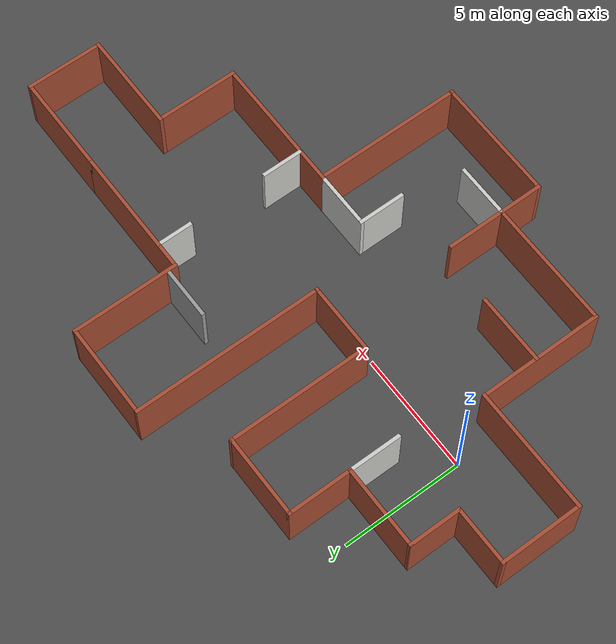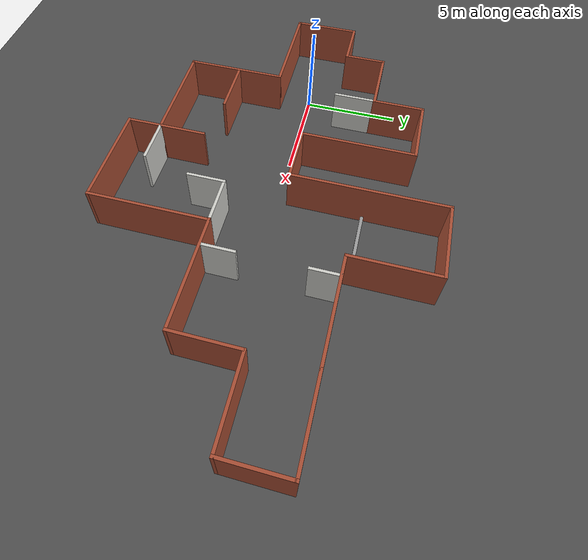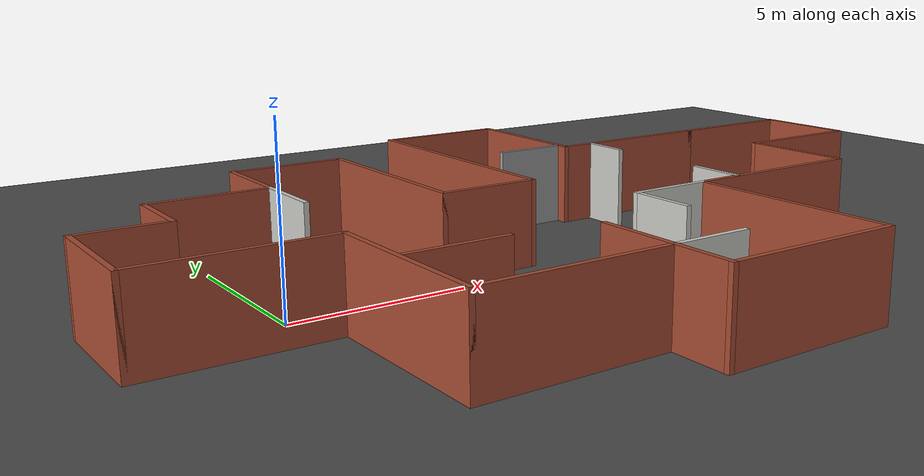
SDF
<sdf version="1.6">
 <world name="default">
  <light name="sun" type="directional">
   <pose>0 0 10 0 -0 0</pose>
   <diffuse>0.8 0.8 0.8 1</diffuse>
   <specular>0.2 0.2 0.2 1</specular>
   <attenuation>
    <range>1000</range>
    <constant>0.9</constant>
    <linear>0.01</linear>
    <quadratic>0.001</quadratic>
   </attenuation>
   <direction>-0.5 0.1 -0.9</direction>
  </light>
  <model name="ground_plane">
   <static>1</static>
   <link name="link">
    <collision name="collision">
     <geometry><plane><normal>0 0 1</normal><size>100 100</size></plane></geometry>
     <surface>
      <contact><collide_bitmask>65535</collide_bitmask></contact>
      <friction><ode><mu>100</mu><mu2>50</mu2></ode></friction>
     </surface>
    </collision>
    <visual name="visual">
     <cast_shadows>0</cast_shadows>
     <geometry><plane><normal>0 0 1</normal><size>100 100</size></plane></geometry>
     <material>
      <script><uri>file://media/materials/scripts/gazebo.material</uri><name>Gazebo/Grey</name></script>
     </material>
    </visual>
   </link>
  </model>
  <model name="asphalt_plane">
   <static>1</static>
   <link name="link">
    <collision name="collision"><geometry><box><size>200 200 0.1</size></box></geometry></collision>
    <visual name="visual">
     <cast_shadows>0</cast_shadows>
     <geometry><box><size>200 200 0.1</size></box></geometry>
     <material>
      <script>
       <uri>model://asphalt_plane/materials/scripts</uri>
       <uri>model://asphalt_plane/materials/textures</uri>
       <name>vrc/asphalt</name>
      </script>
     </material>
    </visual>
   </link>
  </model>
  <physics name="default_physics" default="0" type="ode">
   <ode>
    <solver>
     <type>quick</type>
     <iters>10</iters>
     <sor>1.3</sor>
     <use_dynamic_moi_rescaling>0</use_dynamic_moi_rescaling>
    </solver>
    <constraints>
     <cfm>0</cfm>
     <erp>0.2</erp>
     <contact_max_correcting_vel>100</contact_max_correcting_vel>
     <contact_surface_layer>0.001</contact_surface_layer>
    </constraints>
   </ode>
   <max_step_size>0.002</max_step_size>
   <real_time_factor>1</real_time_factor>
   <real_time_update_rate>500</real_time_update_rate>
  </physics>
  <gravity>0 0 -9.8066</gravity>
  <magnetic_field>6e-06 2.3e-05 -4.2e-05</magnetic_field>
  <atmosphere type="adiabatic"/>
  <scene><ambient>0.4 0.4 0.4 1</ambient><background>0.7 0.7 0.7 1</background><shadows>1</shadows></scene>
  <audio><device>default</device></audio>
  <spherical_coordinates>
   <surface_model>EARTH_WGS84</surface_model>
   <latitude_deg>0</latitude_deg>
   <longitude_deg>0</longitude_deg>
   <elevation>0</elevation>
   <heading_deg>0</heading_deg>
  </spherical_coordinates>
  <model name="complex_home_3">
   <pose>8.31319 -0.056291 0 0 -0 0</pose>
   <link name="Wall_12">
    <collision name="Wall_12_Collision">
     <geometry><box><size>3.5 0.15 2.5</size></box></geometry>
     <pose>0 0 1.25 0 -0 0</pose>
    </collision>
    <visual name="Wall_12_Visual">
     <pose>0 0 1.25 0 -0 0</pose>
     <geometry><box><size>3.5 0.15 2.5</size></box></geometry>
     <material>
      <script><uri>file://media/materials/scripts/gazebo.material</uri><name>Gazebo/Bricks</name></script>
      <ambient>1 1 1 1</ambient>
     </material>
     <meta><layer>0</layer></meta>
    </visual>
    <pose>-12.6 0.075 0 0 -0 -1.5708</pose>
   </link>
   <link name="Wall_13">
    <collision name="Wall_13_Collision">
     <geometry><box><size>5.25 0.15 2.5</size></box></geometry>
     <pose>0 0 1.25 0 -0 0</pose>
    </collision>
    <visual name="Wall_13_Visual">
     <pose>0 0 1.25 0 -0 0</pose>
     <geometry><box><size>5.25 0.15 2.5</size></box></geometry>
     <material>
      <script><uri>file://media/materials/scripts/gazebo.material</uri><name>Gazebo/Bricks</name></script>
      <ambient>1 1 1 1</ambient>
     </material>
     <meta><layer>0</layer></meta>
    </visual>
    <pose>-10.05 -1.6 0 0 -0 0</pose>
   </link>
   <link name="Wall_22">
    <collision name="Wall_22_Collision">
     <geometry><box><size>2.5 0.15 2.5</size></box></geometry>
     <pose>0 0 1.25 0 -0 0</pose>
    </collision>
    <visual name="Wall_22_Visual">
     <pose>0 0 1.25 0 -0 0</pose>
     <geometry><box><size>2.5 0.15 2.5</size></box></geometry>
     <material>
      <script><uri>file://media/materials/scripts/gazebo.material</uri><name>Gazebo/Bricks</name></script>
      <ambient>1 1 1 1</ambient>
     </material>
     <meta><layer>0</layer></meta>
    </visual>
    <pose>-11.425 1.75 0 0 -0 0</pose>
   </link>
   <link name="Wall_23">
    <collision name="Wall_23_Collision">
     <geometry><box><size>2.25 0.15 2.5</size></box></geometry>
     <pose>0 0 1.25 0 -0 0</pose>
    </collision>
    <visual name="Wall_23_Visual">
     <pose>0 0 1.25 0 -0 0</pose>
     <geometry><box><size>2.25 0.15 2.5</size></box></geometry>
     <material>
      <script><uri>file://media/materials/scripts/gazebo.material</uri><name>Gazebo/Bricks</name></script>
      <ambient>1 1 1 1</ambient>
     </material>
     <meta><layer>0</layer></meta>
    </visual>
    <pose>-10.25 2.8 0 0 -0 1.5708</pose>
   </link>
   <link name="Wall_24">
    <collision name="Wall_24_Collision">
     <geometry><box><size>3.5 0.15 2.5</size></box></geometry>
     <pose>0 0 1.25 0 -0 0</pose>
    </collision>
    <visual name="Wall_24_Visual">
     <pose>0 0 1.25 0 -0 0</pose>
     <geometry><box><size>3.5 0.15 2.5</size></box></geometry>
     <material>
      <script><uri>file://media/materials/scripts/gazebo.material</uri><name>Gazebo/Bricks</name></script>
      <ambient>1 1 1 1</ambient>
     </material>
     <meta><layer>0</layer></meta>
    </visual>
    <pose>-8.575 3.85 0 0 -0 0</pose>
   </link>
   <link name="Wall_25">
    <collision name="Wall_25_Collision">
     <geometry><box><size>2.25 0.15 2.5</size></box></geometry>
     <pose>0 0 1.25 0 -0 0</pose>
    </collision>
    <visual name="Wall_25_Visual">
     <pose>0 0 1.25 0 -0 0</pose>
     <geometry><box><size>2.25 0.15 2.5</size></box></geometry>
     <material>
      <script><uri>file://media/materials/scripts/gazebo.material</uri><name>Gazebo/CeilingTiled</name></script>
      <ambient>1 1 1 1</ambient>
     </material>
     <meta><layer>0</layer></meta>
    </visual>
    <pose>-6.9 2.8 0 0 -0 -1.5708</pose>
   </link>
   <link name="Wall_27">
    <collision name="Wall_27_Collision">
     <geometry><box><size>2.75 0.15 2.5</size></box></geometry>
     <pose>0 0 1.25 0 -0 0</pose>
    </collision>
    <visual name="Wall_27_Visual">
     <pose>0 0 1.25 0 -0 0</pose>
     <geometry><box><size>2.75 0.15 2.5</size></box></geometry>
     <material>
      <script><uri>file://media/materials/scripts/gazebo.material</uri><name>Gazebo/Bricks</name></script>
      <ambient>1 1 1 1</ambient>
     </material>
     <meta><layer>0</layer></meta>
    </visual>
    <pose>-6.9 5.15 0 0 -0 1.5708</pose>
   </link>
   <link name="Wall_28">
    <collision name="Wall_28_Collision">
     <geometry><box><size>3.5 0.15 2.5</size></box></geometry>
     <pose>0 0 1.25 0 -0 0</pose>
    </collision>
    <visual name="Wall_28_Visual">
     <pose>0 0 1.25 0 -0 0</pose>
     <geometry><box><size>3.5 0.15 2.5</size></box></geometry>
     <material>
      <script><uri>file://media/materials/scripts/gazebo.material</uri><name>Gazebo/Bricks</name></script>
      <ambient>1 1 1 1</ambient>
     </material>
     <meta><layer>0</layer></meta>
    </visual>
    <pose>-5.225 6.45 0 0 -0 0</pose>
   </link>
   <link name="Wall_29">
    <collision name="Wall_29_Collision">
     <geometry><box><size>6 0.15 2.5</size></box></geometry>
     <pose>0 0 1.25 0 -0 0</pose>
    </collision>
    <visual name="Wall_29_Visual">
     <pose>0 0 1.25 0 -0 0</pose>
     <geometry><box><size>6 0.15 2.5</size></box></geometry>
     <material>
      <script><uri>file://media/materials/scripts/gazebo.material</uri><name>Gazebo/Bricks</name></script>
      <ambient>1 1 1 1</ambient>
     </material>
     <meta><layer>0</layer></meta>
    </visual>
    <pose>-3.55 3.525 0 0 -0 -1.5708</pose>
   </link>
   <link name="Wall_30">
    <collision name="Wall_30_Collision">
     <geometry><box><size>3 0.15 2.5</size></box></geometry>
     <pose>0 0 1.25 0 -0 0</pose>
    </collision>
    <visual name="Wall_30_Visual">
     <pose>0 0 1.25 0 -0 0</pose>
     <geometry><box><size>3 0.15 2.5</size></box></geometry>
     <material>
      <script><uri>file://media/materials/scripts/gazebo.material</uri><name>Gazebo/Bricks</name></script>
      <ambient>1 1 1 1</ambient>
     </material>
     <meta><layer>0</layer></meta>
    </visual>
    <pose>-2.125 0.6 0 0 -0 0</pose>
   </link>
   <link name="Wall_31">
    <collision name="Wall_31_Collision">
     <geometry><box><size>8 0.15 2.5</size></box></geometry>
     <pose>0 0 1.25 0 -0 0</pose>
    </collision>
    <visual name="Wall_31_Visual">
     <pose>0 0 1.25 0 -0 0</pose>
     <geometry><box><size>8 0.15 2.5</size></box></geometry>
     <material>
      <script><uri>file://media/materials/scripts/gazebo.material</uri><name>Gazebo/Bricks</name></script>
      <ambient>1 1 1 1</ambient>
     </material>
     <meta><layer>0</layer></meta>
    </visual>
    <pose>-0.7 4.525 0 0 -0 1.5708</pose>
   </link>
   <link name="Wall_32">
    <collision name="Wall_32_Collision">
     <geometry><box><size>4 0.15 2.5</size></box></geometry>
     <pose>0 0 1.25 0 -0 0</pose>
    </collision>
    <visual name="Wall_32_Visual">
     <pose>0 0 1.25 0 -0 0</pose>
     <geometry><box><size>4 0.15 2.5</size></box></geometry>
     <material>
      <script><uri>file://media/materials/scripts/gazebo.material</uri><name>Gazebo/Bricks</name></script>
      <ambient>1 1 1 1</ambient>
     </material>
     <meta><layer>0</layer></meta>
    </visual>
    <pose>1.225 8.45 0 0 -0 0</pose>
   </link>
   <link name="Wall_33">
    <collision name="Wall_33_Collision">
     <geometry><box><size>4.5 0.15 2.5</size></box></geometry>
     <pose>0 0 1.25 0 -0 0</pose>
    </collision>
    <visual name="Wall_33_Visual">
     <pose>0 0 1.25 0 -0 0</pose>
     <geometry><box><size>4.5 0.15 2.5</size></box></geometry>
     <material>
      <script><uri>file://media/materials/scripts/gazebo.material</uri><name>Gazebo/Bricks</name></script>
      <ambient>1 1 1 1</ambient>
     </material>
     <meta><layer>0</layer></meta>
    </visual>
    <pose>3.15 6.275 0 0 -0 -1.5708</pose>
   </link>
   <link name="Wall_34">
    <collision name="Wall_34_Collision">
     <geometry><box><size>5.5 0.15 2.5</size></box></geometry>
     <pose>0 0 1.25 0 -0 0</pose>
    </collision>
    <visual name="Wall_34_Visual">
     <pose>0 0 1.25 0 -0 0</pose>
     <geometry><box><size>5.5 0.15 2.5</size></box></geometry>
     <material>
      <script><uri>file://media/materials/scripts/gazebo.material</uri><name>Gazebo/Bricks</name></script>
      <ambient>1 1 1 1</ambient>
     </material>
     <meta><layer>0</layer></meta>
    </visual>
    <pose>5.825 4.1 0 0 -0 0</pose>
   </link>
   <link name="Wall_36">
    <collision name="Wall_36_Collision">
     <geometry><box><size>4.25 0.15 2.5</size></box></geometry>
     <pose>0 0 1.25 0 -0 0</pose>
    </collision>
    <visual name="Wall_36_Visual">
     <pose>0 0 1.25 0 -0 0</pose>
     <geometry><box><size>4.25 0.15 2.5</size></box></geometry>
     <material>
      <script><uri>file://media/materials/scripts/gazebo.material</uri><name>Gazebo/Bricks</name></script>
      <ambient>1 1 1 1</ambient>
     </material>
     <meta><layer>0</layer></meta>
    </visual>
    <pose>10.55 4.1 0 0 -0 0</pose>
   </link>
   <link name="Wall_37">
    <collision name="Wall_37_Collision">
     <geometry><box><size>3.25 0.15 2.5</size></box></geometry>
     <pose>0 0 1.25 0 -0 0</pose>
    </collision>
    <visual name="Wall_37_Visual">
     <pose>0 0 1.25 0 -0 0</pose>
     <geometry><box><size>3.25 0.15 2.5</size></box></geometry>
     <material>
      <script><uri>file://media/materials/scripts/gazebo.material</uri><name>Gazebo/Bricks</name></script>
      <ambient>1 1 1 1</ambient>
     </material>
     <meta><layer>0</layer></meta>
    </visual>
    <pose>12.6 2.55 0 0 -0 -1.5708</pose>
   </link>
   <link name="Wall_47">
    <collision name="Wall_47_Collision">
     <geometry><box><size>4.25 0.15 2.5</size></box></geometry>
     <pose>0 0 1.25 0 -0 0</pose>
    </collision>
    <visual name="Wall_47_Visual">
     <pose>0 0 1.25 0 -0 0</pose>
     <geometry><box><size>4.25 0.15 2.5</size></box></geometry>
     <material>
      <script><uri>file://media/materials/scripts/gazebo.material</uri><name>Gazebo/Bricks</name></script>
      <ambient>1 1 1 1</ambient>
     </material>
     <meta><layer>0</layer></meta>
    </visual>
    <pose>10.55 1 0 0 -0 3.14159</pose>
   </link>
   <link name="Wall_49">
    <collision name="Wall_49_Collision">
     <geometry><box><size>3.5 0.15 2.5</size></box></geometry>
     <pose>0 0 1.25 0 -0 0</pose>
    </collision>
    <visual name="Wall_49_Visual">
     <pose>0 0 1.25 0 -0 0</pose>
     <geometry><box><size>3.5 0.15 2.5</size></box></geometry>
     <material>
      <script><uri>file://media/materials/scripts/gazebo.material</uri><name>Gazebo/Bricks</name></script>
      <ambient>1 1 1 1</ambient>
     </material>
     <meta><layer>0</layer></meta>
    </visual>
    <pose>8.5 -0.675 0 0 -0 -1.5708</pose>
   </link>
   <link name="Wall_50">
    <collision name="Wall_50_Collision">
     <geometry><box><size>5.79 0.15 2.5</size></box></geometry>
     <pose>0 0 1.25 0 -0 0</pose>
    </collision>
    <visual name="Wall_50_Visual">
     <pose>0 0 1.25 0 -0 0</pose>
     <geometry><box><size>5.79 0.15 2.5</size></box></geometry>
     <material>
      <script><uri>file://media/materials/scripts/gazebo.material</uri><name>Gazebo/Bricks</name></script>
      <ambient>1 1 1 1</ambient>
     </material>
     <meta><layer>0</layer></meta>
    </visual>
    <pose>5.68 -2.35 0 0 -0 3.14159</pose>
   </link>
   <link name="Wall_52">
    <collision name="Wall_52_Collision">
     <geometry><box><size>6.25 0.15 2.5</size></box></geometry>
     <pose>0 0 1.25 0 -0 0</pose>
    </collision>
    <visual name="Wall_52_Visual">
     <pose>0 0 1.25 0 -0 0</pose>
     <geometry><box><size>6.25 0.15 2.5</size></box></geometry>
     <material>
      <script><uri>file://media/materials/scripts/gazebo.material</uri><name>Gazebo/Bricks</name></script>
      <ambient>1 1 1 1</ambient>
     </material>
     <meta><layer>0</layer></meta>
    </visual>
    <pose>2.88 -5.4 0 0 -0 -1.5708</pose>
   </link>
   <link name="Wall_54">
    <collision name="Wall_54_Collision">
     <geometry><box><size>5.25 0.15 2.5</size></box></geometry>
     <pose>0 0 1.25 0 -0 0</pose>
    </collision>
    <visual name="Wall_54_Visual">
     <pose>0 0 1.25 0 -0 0</pose>
     <geometry><box><size>5.25 0.15 2.5</size></box></geometry>
     <material>
      <script><uri>file://media/materials/scripts/gazebo.material</uri><name>Gazebo/Bricks</name></script>
      <ambient>1 1 1 1</ambient>
     </material>
     <meta><layer>0</layer></meta>
    </visual>
    <pose>-7.5 -4.15 0 0 -0 -1.5708</pose>
   </link>
   <link name="Wall_58">
    <collision name="Wall_58_Collision">
     <geometry><box><size>5.5 0.15 2.5</size></box></geometry>
     <pose>0 0 1.25 0 -0 0</pose>
    </collision>
    <visual name="Wall_58_Visual">
     <pose>0 0 1.25 0 -0 0</pose>
     <geometry><box><size>5.5 0.15 2.5</size></box></geometry>
     <material>
      <script><uri>file://media/materials/scripts/gazebo.material</uri><name>Gazebo/Bricks</name></script>
      <ambient>1 1 1 1</ambient>
     </material>
     <meta><layer>0</layer></meta>
    </visual>
    <pose>-4.825 -6.7 0 0 -0 0</pose>
   </link>
   <link name="Wall_64">
    <collision name="Wall_64_Collision">
     <geometry><box><size>5.25 0.15 2.5</size></box></geometry>
     <pose>0 0 1.25 0 -0 0</pose>
    </collision>
    <visual name="Wall_64_Visual">
     <pose>0 0 1.25 0 -0 0</pose>
     <geometry><box><size>5.25 0.15 2.5</size></box></geometry>
     <material>
      <script><uri>file://media/materials/scripts/gazebo.material</uri><name>Gazebo/Bricks</name></script>
      <ambient>1 1 1 1</ambient>
     </material>
     <meta><layer>0</layer></meta>
    </visual>
    <pose>0.33 -8.45 0 0 -0 3.14159</pose>
   </link>
   <link name="Wall_65">
    <collision name="Wall_65_Collision">
     <geometry><box><size>4.25 0.15 2.5</size></box></geometry>
     <pose>0 0 1.25 0 -0 0</pose>
    </collision>
    <visual name="Wall_65_Visual">
     <pose>0 0 1.25 0 -0 0</pose>
     <geometry><box><size>4.25 0.15 2.5</size></box></geometry>
     <material>
      <script><uri>file://media/materials/scripts/gazebo.material</uri><name>Gazebo/Bricks</name></script>
      <ambient>1 1 1 1</ambient>
     </material>
     <meta><layer>0</layer></meta>
    </visual>
    <pose>-2.22 -6.4 0 0 -0 1.5708</pose>
   </link>
   <link name="Wall_67">
    <collision name="Wall_67_Collision">
     <geometry><box><size>2.25 0.15 2.5</size></box></geometry>
     <pose>0 0 1.25 0 -0 0</pose>
    </collision>
    <visual name="Wall_67_Visual">
     <pose>0 0 1.25 0 -0 0</pose>
     <geometry><box><size>2.25 0.15 2.5</size></box></geometry>
     <material>
      <script><uri>file://media/materials/scripts/gazebo.material</uri><name>Gazebo/CeilingTiled</name></script>
      <ambient>1 1 1 1</ambient>
     </material>
     <meta><layer>0</layer></meta>
    </visual>
    <pose>-1.1 -6.7 0 0 -0 0</pose>
   </link>
   <link name="Wall_69">
    <collision name="Wall_69_Collision">
     <geometry><box><size>2.5 0.15 2.5</size></box></geometry>
     <pose>0 0 1.25 0 -0 0</pose>
    </collision>
    <visual name="Wall_69_Visual">
     <pose>0 0 1.25 0 -0 0</pose>
     <geometry><box><size>2.5 0.15 2.5</size></box></geometry>
     <material>
      <script><uri>file://media/materials/scripts/gazebo.material</uri><name>Gazebo/CeilingTiled</name></script>
      <ambient>1 1 1 1</ambient>
     </material>
     <meta><layer>0</layer></meta>
    </visual>
    <pose>1.705 -2.35 0 0 -0 3.14159</pose>
   </link>
   <link name="Wall_70">
    <collision name="Wall_70_Collision">
     <geometry><box><size>2 0.15 2.5</size></box></geometry>
     <pose>0 0 1.25 0 -0 0</pose>
    </collision>
    <visual name="Wall_70_Visual">
     <pose>0 0 1.25 0 -0 0</pose>
     <geometry><box><size>2 0.15 2.5</size></box></geometry>
     <material>
      <script><uri>file://media/materials/scripts/gazebo.material</uri><name>Gazebo/CeilingTiled</name></script>
      <ambient>1 1 1 1</ambient>
     </material>
     <meta><layer>0</layer></meta>
    </visual>
    <pose>0.53 -3.275 0 0 -0 -1.5708</pose>
   </link>
   <link name="Wall_72">
    <collision name="Wall_72_Collision">
     <geometry><box><size>1.75 0.15 2.5</size></box></geometry>
     <pose>0 0 1.25 0 -0 0</pose>
    </collision>
    <visual name="Wall_72_Visual">
     <pose>0 0 1.25 0 -0 0</pose>
     <geometry><box><size>1.75 0.15 2.5</size></box></geometry>
     <material>
      <script><uri>file://media/materials/scripts/gazebo.material</uri><name>Gazebo/CeilingTiled</name></script>
      <ambient>1 1 1 1</ambient>
     </material>
     <meta><layer>0</layer></meta>
    </visual>
    <pose>4.23605 -1.50901 0 0 -0 1.5708</pose>
   </link>
   <link name="Wall_74">
    <collision name="Wall_74_Collision">
     <geometry><box><size>1.5 0.15 2.5</size></box></geometry>
     <pose>0 0 1.25 0 -0 0</pose>
    </collision>
    <visual name="Wall_74_Visual">
     <pose>0 0 1.25 0 -0 0</pose>
     <geometry><box><size>1.5 0.15 2.5</size></box></geometry>
     <material>
      <script><uri>file://media/materials/scripts/gazebo.material</uri><name>Gazebo/CeilingTiled</name></script>
      <ambient>1 1 1 1</ambient>
     </material>
     <meta><layer>0</layer></meta>
    </visual>
    <pose>4.20563 3.37325 0 0 -0 -1.5708</pose>
   </link>
   <link name="Wall_78">
    <collision name="Wall_78_Collision">
     <geometry><box><size>2.25 0.15 2.5</size></box></geometry>
     <pose>0 0 1.25 0 -0 0</pose>
    </collision>
    <visual name="Wall_78_Visual">
     <pose>0 0 1.25 0 -0 0</pose>
     <geometry><box><size>2.25 0.15 2.5</size></box></geometry>
     <material>
      <script><uri>file://media/materials/scripts/gazebo.material</uri><name>Gazebo/Grey</name></script>
      <ambient>1 1 1 1</ambient>
     </material>
     <meta><layer>0</layer></meta>
    </visual>
    <pose>2.05531 4.43502 0 0 -0 3.14159</pose>
   </link>
   <link name="Wall_81">
    <collision name="Wall_81_Collision">
     <geometry><box><size>3 0.15 2.5</size></box></geometry>
     <pose>0 0 1.25 0 -0 0</pose>
    </collision>
    <visual name="Wall_81_Visual">
     <pose>0 0 1.25 0 -0 0</pose>
     <geometry><box><size>3 0.15 2.5</size></box></geometry>
     <material>
      <script><uri>file://media/materials/scripts/gazebo.material</uri><name>Gazebo/Bricks</name></script>
      <ambient>1 1 1 1</ambient>
     </material>
     <meta><layer>0</layer></meta>
    </visual>
    <pose>-6.07217 -3.95615 0 0 -0 0</pose>
   </link>
   <static>1</static>
  </model>
 </world>
</sdf>
